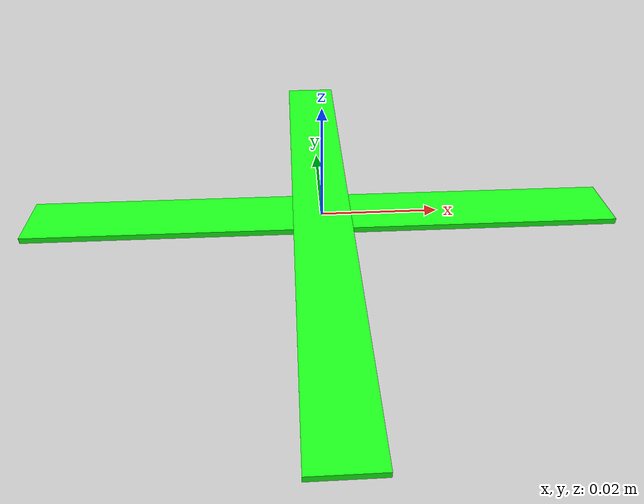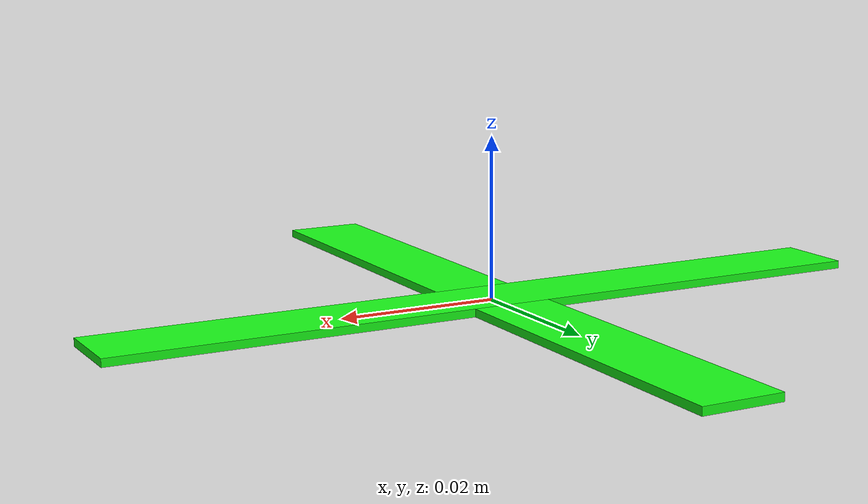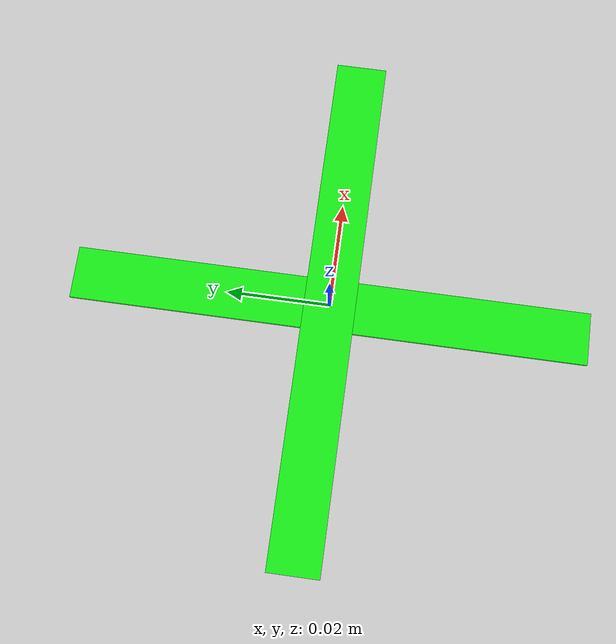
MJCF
<mujoco model="neon_cross">
  <worldbody>
  <!-- robosuite/models/objects.py requires that everything be nested within an extra body tag. -->
  <body>
    <body name="object">
      <geom name="cross_x_vis" type="box" size="0.05 0.005 0.0005" group="1" contype="0" conaffinity="0" rgba="0.1 1.0 0.1 1"/>
      <geom name="cross_y_vis" type="box" size="0.005 0.05 0.0005" group="1" contype="0" conaffinity="0" rgba="0.1 1.0 0.1 1"/>
      <geom name="cross_x_col" type="box" size="0.05 0.005 0.0005" group="0" friction="1 0.005 0.0001"/>
      <geom name="cross_y_col" type="box" size="0.005 0.05 0.0005" group="0" friction="1 0.005 0.0001"/>
    </body>

    <!--
    The site tags specify the approximate bounding volume for the object.
    This is to make sure that other objects cannot spawn inside the object or cause an overlap.
    -->

    <site name="bottom_site" pos="0 0 -0.0005" rgba="0 0 0 0" size="0.001"/>
    <site name="top_site" pos="0 0 0.0005" rgba="0 0 0 0" size="0.001"/>
    <site name="horizontal_radius_site" pos="0.015 0 0" rgba="0 0 0 0" size="0.001"/>

  </body>
  </worldbody>
</mujoco>
